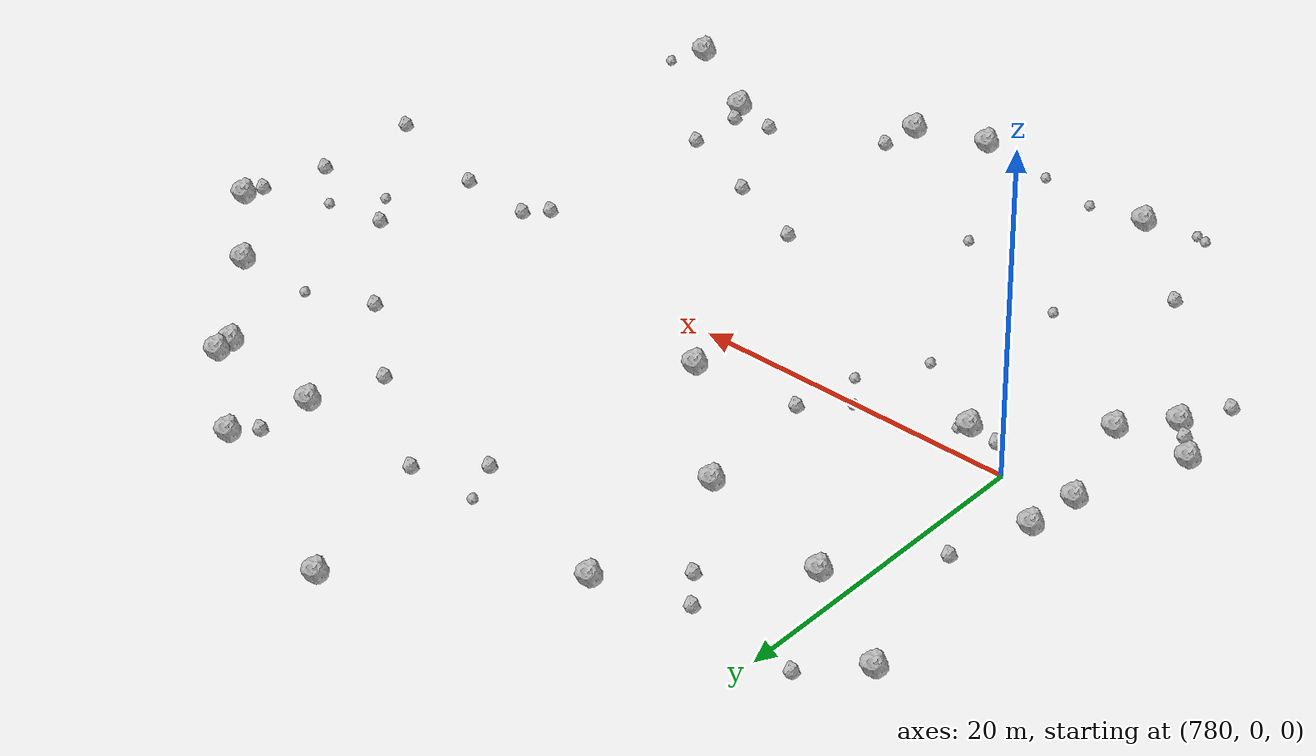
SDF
<sdf version="1.6">
 <world name="default">
  <include><uri>model://sun</uri></include>
  <model name="rock1_20_4">
   <include><uri>model://rock1</uri><pose>801.1461147076594 29.13245354199489 0.5 0 0 0</pose></include>
  </model>
  <model name="rock1_20_5">
   <include><uri>model://rock1</uri><pose>800.0698750303114 -24.886229224019637 0.5 0 0 0</pose></include>
  </model>
  <model name="rock1_20_6">
   <include><uri>model://rock1</uri><pose>819.0476836526616 17.64452687091366 0.5 0 0 0</pose></include>
  </model>
  <model name="rock1_20_7">
   <include><uri>model://rock1</uri><pose>819.3032017681378 -22.071734771546545 0.5 0 0 0</pose></include>
  </model>
  <model name="rock1_20_8">
   <include><uri>model://rock1</uri><pose>788.2921272044728 -24.090379933429304 0.5 0 0 0</pose></include>
  </model>
  <model name="rock1_20_9">
   <include><uri>model://rock1</uri><pose>783.7916978860798 -2.1044364275243552 0.5 0 0 0</pose></include>
  </model>
  <model name="rock1_20_10">
   <include><uri>model://rock1</uri><pose>818.9544371966947 18.780041024310997 0.5 0 0 0</pose></include>
  </model>
  <model name="rock1_20_11">
   <include><uri>model://rock1</uri><pose>782.021528469235 12.550100335328935 0.5 0 0 0</pose></include>
  </model>
  <model name="rock1_20_12">
   <include><uri>model://rock1</uri><pose>775.6183693960094 -9.663591252708123 0.5 0 0 0</pose></include>
  </model>
  <model name="rock1_20_13">
   <include><uri>model://rock1</uri><pose>824.2689897029384 11.637534947441239 0.5 0 0 0</pose></include>
  </model>
  <model name="rock1_20_14">
   <include><uri>model://rock1</uri><pose>775.8574293666112 -0.664176609637515 0.5 0 0 0</pose></include>
  </model>
  <model name="rock1_20_15">
   <include><uri>model://rock1</uri><pose>813.1509829177945 23.587369936043828 0.5 0 0 0</pose></include>
  </model>
  <model name="rock1_20_16">
   <include><uri>model://rock1</uri><pose>775.1381868379984 16.70069854435154 0.5 0 0 0</pose></include>
  </model>
  <model name="rock1_20_17">
   <include><uri>model://rock1</uri><pose>773.4033262000145 -7.273690548466693 0.5 0 0 0</pose></include>
  </model>
  <model name="rock1_20_18">
   <include><uri>model://rock1</uri><pose>791.0278234479239 10.299438988536608 0.5 0 0 0</pose></include>
  </model>
  <model name="rock1_20_19">
   <include><uri>model://rock1</uri><pose>798.4578853869443 3.010904764714539 0.5 0 0 0</pose></include>
  </model>
  <model name="rock1_20_20">
   <include><uri>model://rock1</uri><pose>829.029585145423 6.938454815439989 0.5 0 0 0</pose></include>
  </model>
  <model name="rock1_20_21">
   <include><uri>model://rock1</uri><pose>804.2625420424934 -23.434722791035632 0.5 0 0 0</pose></include>
  </model>
  <model name="rock1_20_22">
   <include><uri>model://rock1</uri><pose>790.4869148681157 20.419918613434675 0.5 0 0 0</pose></include>
  </model>
  <model name="rock1_20_23">
   <include><uri>model://rock1</uri><pose>813.65690910301 -18.711293657927193 0.5 0 0 0</pose></include>
  </model>
  <model name="rock1_20_24">
   <include><uri>model://rock1</uri><pose>776.1964678161847 2.6042246657937653 0.5 0 0 0</pose></include>
  </model>
  <model name="rock1_20_25">
   <include><uri>model://rock1</uri><pose>811.9450501109882 18.861835342347263 0.5 0 0 0</pose></include>
  </model>
  <model name="rock1_20_26">
   <include><uri>model://rock1</uri><pose>777.8931207539069 -6.9979748092110015 0.5 0 0 0</pose></include>
  </model>
  <model name="rock2_20_0">
   <include><uri>model://rock2</uri><pose>781.7998100444954 -1.916916526244968 0.3 0 0 0</pose></include>
  </model>
  <model name="rock2_20_1">
   <include><uri>model://rock2</uri><pose>802.6891918940211 -9.9924275258833 0.3 0 0 0</pose></include>
  </model>
  <model name="rock2_20_2">
   <include><uri>model://rock2</uri><pose>807.7874277354252 -12.04007113983273 0.3 0 0 0</pose></include>
  </model>
  <model name="rock2_20_3">
   <include><uri>model://rock2</uri><pose>811.9929471677985 22.289210507778883 0.3 0 0 0</pose></include>
  </model>
  <model name="rock2_20_4">
   <include><uri>model://rock2</uri><pose>828.6395426535296 5.725213004187935 0.3 0 0 0</pose></include>
  </model>
  <model name="rock2_20_5">
   <include><uri>model://rock2</uri><pose>774.6004213961673 -8.72572905018917 0.3 0 0 0</pose></include>
  </model>
  <model name="rock2_20_6">
   <include><uri>model://rock2</uri><pose>803.6762328856972 19.536909890562505 0.3 0 0 0</pose></include>
  </model>
  <model name="rock2_20_7">
   <include><uri>model://rock2</uri><pose>827.115345734714 -4.445817414609621 0.3 0 0 0</pose></include>
  </model>
  <model name="rock2_20_8">
   <include><uri>model://rock2</uri><pose>820.1602919597856 -2.416891758103553 0.3 0 0 0</pose></include>
  </model>
  <model name="rock2_20_9">
   <include><uri>model://rock2</uri><pose>813.0809943029705 -14.167753109362017 0.3 0 0 0</pose></include>
  </model>
  <model name="rock2_20_10">
   <include><uri>model://rock2</uri><pose>815.6333710208811 -2.0081879969511185 0.3 0 0 0</pose></include>
  </model>
  <model name="rock2_20_11">
   <include><uri>model://rock2</uri><pose>827.4653084227577 1.902665154693814 0.3 0 0 0</pose></include>
  </model>
  <model name="rock2_20_12">
   <include><uri>model://rock2</uri><pose>800.5930741101888 16.837720210235688 0.3 0 0 0</pose></include>
  </model>
  <model name="rock2_20_13">
   <include><uri>model://rock2</uri><pose>814.5201699594901 -3.153511263342189 0.3 0 0 0</pose></include>
  </model>
  <model name="rock2_20_14">
   <include><uri>model://rock2</uri><pose>777.7867720504827 7.287732996757427 0.3 0 0 0</pose></include>
  </model>
  <model name="rock2_20_15">
   <include><uri>model://rock2</uri><pose>812.9576849801972 -17.494425244368056 0.3 0 0 0</pose></include>
  </model>
  <model name="rock2_20_16">
   <include><uri>model://rock2</uri><pose>774.1875468858484 -12.452927034792204 0.3 0 0 0</pose></include>
  </model>
  <model name="rock2_20_17">
   <include><uri>model://rock2</uri><pose>804.5082156450767 -21.060484775836414 0.3 0 0 0</pose></include>
  </model>
  <model name="rock2_20_18">
   <include><uri>model://rock2</uri><pose>791.8686697427532 2.365756791875249 0.3 0 0 0</pose></include>
  </model>
  <model name="rock2_20_19">
   <include><uri>model://rock2</uri><pose>785.008035070944 18.819360049891316 0.3 0 0 0</pose></include>
  </model>
  <model name="rock2_20_20">
   <include><uri>model://rock2</uri><pose>782.3431533938951 -18.761001126493298 0.3 0 0 0</pose></include>
  </model>
  <model name="rock2_20_21">
   <include><uri>model://rock2</uri><pose>786.6821764241545 16.756699169830462 0.3 0 0 0</pose></include>
  </model>
  <model name="rock2_20_22">
   <include><uri>model://rock2</uri><pose>821.13055014034 3.885484579517758 0.3 0 0 0</pose></include>
  </model>
  <model name="rock2_20_23">
   <include><uri>model://rock2</uri><pose>777.9696127421814 19.543399077788642 0.3 0 0 0</pose></include>
  </model>
  <model name="rock2_20_24">
   <include><uri>model://rock2</uri><pose>810.7788052003048 -18.013849577368397 0.3 0 0 0</pose></include>
  </model>
  <model name="rock2_20_25">
   <include><uri>model://rock2</uri><pose>815.5262413252037 10.05340211259756 0.3 0 0 0</pose></include>
  </model>
  <model name="rock2_20_26">
   <include><uri>model://rock2</uri><pose>810.3590514665882 14.632824539993614 0.3 0 0 0</pose></include>
  </model>
  <model name="rock3_20_0">
   <include><uri>model://rock3</uri><pose>791.1405134889416 -1.7320525602214722 0.2 0 0 0</pose></include>
  </model>
  <model name="rock3_20_1">
   <include><uri>model://rock3</uri><pose>785.0957991999686 -24.9049662527834 0.2 0 0 0</pose></include>
  </model>
  <model name="rock3_20_2">
   <include><uri>model://rock3</uri><pose>784.200365068039 -1.738805345177994 0.2 0 0 0</pose></include>
  </model>
  <model name="rock3_20_3">
   <include><uri>model://rock3</uri><pose>799.3818614215593 19.37310471363675 0.2 0 0 0</pose></include>
  </model>
  <model name="rock3_20_4">
   <include><uri>model://rock3</uri><pose>786.7614547031175 -13.600960353855047 0.2 0 0 0</pose></include>
  </model>
  <model name="rock3_20_5">
   <include><uri>model://rock3</uri><pose>788.9226518546673 -5.471426030471179 0.2 0 0 0</pose></include>
  </model>
  <model name="rock3_20_6">
   <include><uri>model://rock3</uri><pose>794.6274773515951 -16.224068002644454 0.2 0 0 0</pose></include>
  </model>
  <model name="rock3_20_7">
   <include><uri>model://rock3</uri><pose>789.6790815391506 0.21903741128790344 0.2 0 0 0</pose></include>
  </model>
  <model name="rock3_20_8">
   <include><uri>model://rock3</uri><pose>784.442952079408 -24.736181484159754 0.2 0 0 0</pose></include>
  </model>
  <model name="rock3_20_9">
   <include><uri>model://rock3</uri><pose>822.5751021687292 1.890772645506054 0.2 0 0 0</pose></include>
  </model>
  <model name="rock3_20_10">
   <include><uri>model://rock3</uri><pose>824.6486338001455 4.34118139355963 0.2 0 0 0</pose></include>
  </model>
  <model name="rock3_20_11">
   <include><uri>model://rock3</uri><pose>820.1425485359273 -20.141334421722327 0.2 0 0 0</pose></include>
  </model>
  <model name="rock3_20_12">
   <include><uri>model://rock3</uri><pose>819.3681318026224 11.580928814999439 0.2 0 0 0</pose></include>
  </model>
  <model name="rock3_20_13">
   <include><uri>model://rock3</uri><pose>791.5886218839914 -23.535602400031202 0.2 0 0 0</pose></include>
  </model>
  <model name="rock3_20_14">
   <include><uri>model://rock3</uri><pose>795.2463527325708 -24.27335525177478 0.2 0 0 0</pose></include>
  </model>
 </world>
</sdf>
